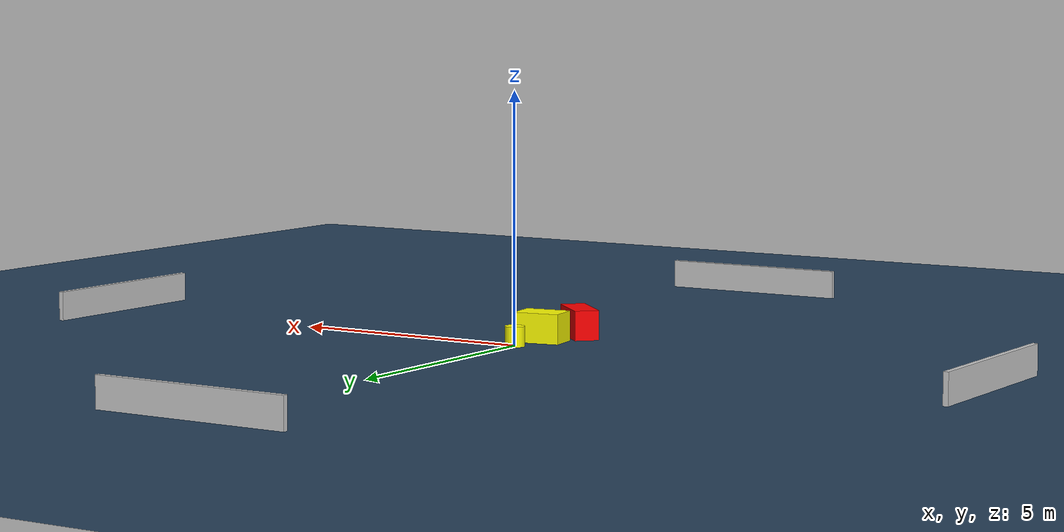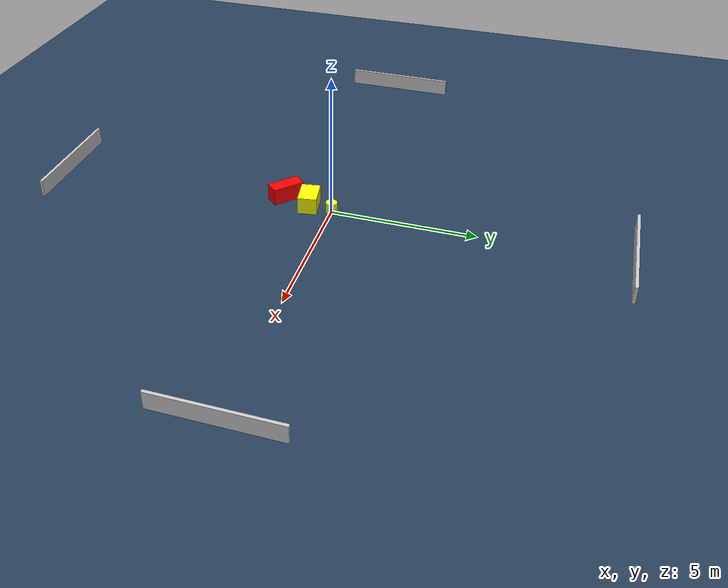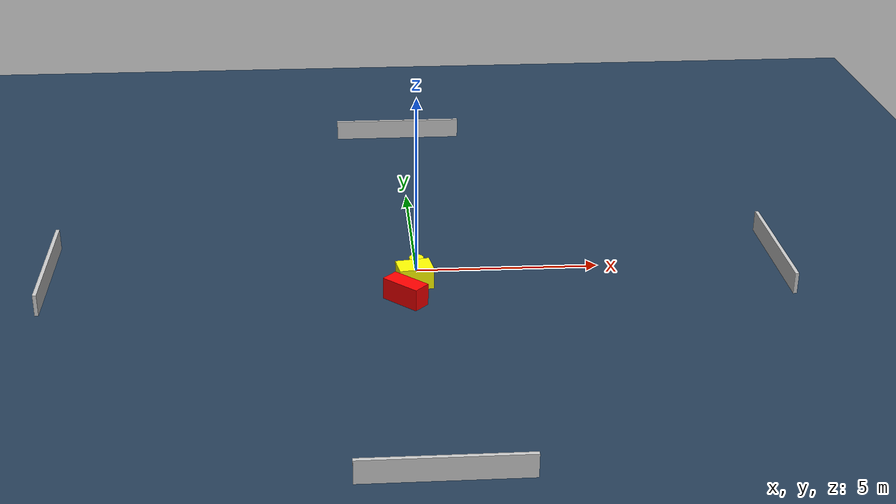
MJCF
<?xml version="1.0" ?>
<mujoco model="generated_environment">
  <option timestep="0.01" integrator="RK4" cone="elliptic"/>
  <default>
    <geom density="1"/>
  </default>
  <asset>
    <texture builtin="gradient" height="3072" name="skybox" rgb1="0.3 0.5 0.7" rgb2="0 0 0" type="skybox" width="512"/>
    <texture builtin="checker" height="300" name="groundplane" rgb1="0.2 0.3 0.4" rgb2="0.1 0.2 0.3" type="2d" width="300"/>
    <material name="groundplane" reflectance="0.2" texrepeat="5 5" texture="groundplane"/>
  </asset>
  <worldbody>
    <light dir="0 0 -1" directional="true" pos="0 0 1.5"/>
    <geom condim="3" friction="0.5 0.005 0.001" material="groundplane" name="floor" pos="0 0 0" size="0 0 0.05" type="plane"/>
    <body name="walls">
      <geom name="wall_1" condim="4" pos="-10.0 0.0 0.3" rgba="0.800000011920929 0.800000011920929 0.800000011920929 1.0" size="0.05 2.0 0.3" type="box"/>
      <geom name="wall_2" condim="4" pos="10.0 0.0 0.3" rgba="0.800000011920929 0.800000011920929 0.800000011920929 1.0" size="0.05 2.0 0.3" type="box"/>
      <geom name="wall_3" condim="4" pos="0.0 -10.0 0.3" rgba="0.800000011920929 0.800000011920929 0.800000011920929 1.0" size="2.0 0.05 0.3" type="box"/>
      <geom name="wall_4" condim="4" pos="0.0 10.0 0.3" rgba="0.800000011920929 0.800000011920929 0.800000011920929 1.0" size="2.0 0.05 0.3" type="box"/>
    </body>
    <body name="robot">
      <joint name="joint_x" type="slide" pos="0 0 0" axis="1 0 0"/>
      <joint name="joint_y" type="slide" pos="0 0 0" axis="0 1 0"/>
      <geom name="robot" type="cylinder" pos="0.0 0.0 0.2" size="0.2 0.2 0.0" mass="5.0" friction="1.0 0.005 0.0001" condim="4" rgba="1.0 1.0 0.0 1.0"/>
    </body>
    <body name="obstacle_1_movable">
      <geom name="obstacle_1_movable" condim="4" pos="-0.10478178415053992 -0.8429372455700653 0.3" euler="0 0 8.539874345632521" friction="0.0 0.005 0.001" rgba="1.0 1.0 0.0 1.0" size="0.46437886845941256 0.3265405203033388 0.3" type="box" mass="0.1"/>
      <joint type="free"/>
    </body>
    <body name="obstacle_2_static">
      <geom name="obstacle_2_static" condim="4" pos="-0.3992721104359586 -1.786413739851881 0.3" euler="0 0 46.36009177602294" friction="0.0 0.005 0.001" rgba="1.0 0.0 0.0 1.0" size="0.248538818352593 0.5663557197796398 0.3" type="box"/>
    </body>
  </worldbody>
  <actuator>
    <motor name="actuator_x" joint="joint_x" gear="1" ctrlrange="-1 1"/>
    <motor name="actuator_y" joint="joint_y" gear="1" ctrlrange="-1 1"/>
  </actuator>
</mujoco>
